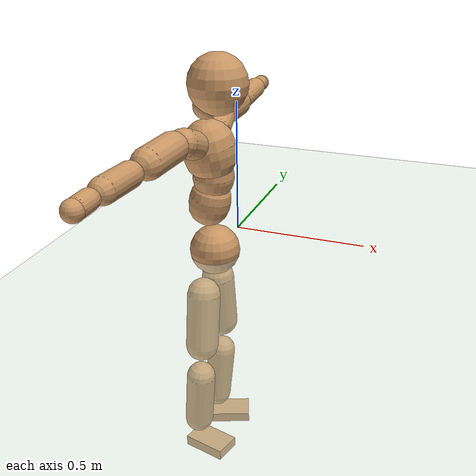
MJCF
<mujoco model="humanoid">
  <compiler coordinate="local" angle="radian"/>
  <default>
    <joint damping="0.0" armature="0.01" stiffness="0.0" limited="true"/>
    <geom conaffinity="1" condim="3" contype="7" margin="0.001" rgba="0.8 0.6 .4 1"/>
  </default>
  <asset>
    <texture type="skybox" builtin="gradient" rgb1=".4 .5 .6" rgb2="0 0 0" width="100" height="100"/>
    <texture builtin="flat" height="1278" mark="cross" markrgb="1 1 1" name="texgeom" random="0.01" rgb1="0.8 0.6 0.4" rgb2="0.8 0.6 0.4" type="cube" width="127"/>
    <texture builtin="checker" height="100" name="texplane" rgb1="0 0 0" rgb2="0.8 0.8 0.8" type="2d" width="100"/>
    <material name="MatPlane" reflectance="0.5" shininess="1" specular="1" texrepeat="60 60" texture="texplane"/>
    <material name="geom" texture="texgeom" texuniform="true"/>
  </asset>
  <worldbody>
    <light cutoff="100" diffuse="1 1 1" dir="-0 0 -1.3" directional="true" exponent="1" pos="0 0 1.3" specular=".1 .1 .1"/>
    <geom conaffinity="1" condim="3" name="floor" pos="0 0 0" rgba="0.8 0.9 0.8 1" size="100 100 .2" type="plane" material="MatPlane"/>
    <body name="Pelvis" pos="0.0016 -0.238 0.0183">
      <freejoint name="Pelvis"/>
      <geom type="sphere" contype="1" conaffinity="1" density="500" size="0.0912" pos="0.0000 0.0000 0.0000" name="Pelvis"/>
      <body name="L_Hip" pos="-0.0215 0.0596 -0.0785">
        <joint name="L_Hip_x" type="hinge" pos="0 0 0" axis="1 0 0" stiffness="800" damping="80" armature="0.02" range="-180.0000 180.0000"/>
        <joint name="L_Hip_y" type="hinge" pos="0 0 0" axis="0 1 0" stiffness="800" damping="80" armature="0.02" range="-180.0000 180.0000"/>
        <joint name="L_Hip_z" type="hinge" pos="0 0 0" axis="0 0 1" stiffness="800" damping="80" armature="0.02" range="-180.0000 180.0000"/>
        <geom type="capsule" contype="1" conaffinity="1" density="500" fromto="0.0007 0.0082 -0.0705 0.0029 0.0327 -0.2819" size="0.0611" name="L_Hip"/>
        <body name="L_Knee" pos="0.0036 0.0408 -0.3524">
          <joint name="L_Knee_x" type="hinge" pos="0 0 0" axis="1 0 0" stiffness="800" damping="80" armature="0.02" range="-180.0000 180.0000"/>
          <joint name="L_Knee_y" type="hinge" pos="0 0 0" axis="0 1 0" stiffness="800" damping="80" armature="0.02" range="-180.0000 180.0000"/>
          <joint name="L_Knee_z" type="hinge" pos="0 0 0" axis="0 0 1" stiffness="800" damping="80" armature="0.02" range="-180.0000 180.0000"/>
          <geom type="capsule" contype="1" conaffinity="1" density="500" fromto="-0.0071 -0.0025 -0.0732 -0.0284 -0.0098 -0.2930" size="0.0536" name="L_Knee"/>
          <body name="L_Ankle" pos="-0.0356 -0.0123 -0.3662">
            <joint name="L_Ankle_x" type="hinge" pos="0 0 0" axis="1 0 0" stiffness="800" damping="80" armature="0.02" range="-180.0000 180.0000"/>
            <joint name="L_Ankle_y" type="hinge" pos="0 0 0" axis="0 1 0" stiffness="800" damping="80" armature="0.02" range="-180.0000 180.0000"/>
            <joint name="L_Ankle_z" type="hinge" pos="0 0 0" axis="0 0 1" stiffness="800" damping="80" armature="0.02" range="-180.0000 180.0000"/>
            <geom type="box" contype="1" conaffinity="1" density="500" pos="0.0553 0.0208 -0.0271" size="0.0798 0.0503 0.0194" quat="0.9839 0.0000 0.0000 0.1788" name="L_Ankle"/>
            <body name="L_Toe" pos="0.1105 0.0415 -0.0542">
              <joint name="L_Toe_x" type="hinge" pos="0 0 0" axis="1 0 0" stiffness="500" damping="50" armature="0.02" range="-180.0000 180.0000"/>
              <joint name="L_Toe_y" type="hinge" pos="0 0 0" axis="0 1 0" stiffness="500" damping="50" armature="0.02" range="-180.0000 180.0000"/>
              <joint name="L_Toe_z" type="hinge" pos="0 0 0" axis="0 0 1" stiffness="500" damping="50" armature="0.02" range="-180.0000 180.0000"/>
              <geom type="box" contype="1" conaffinity="1" density="500" pos="0.0000 0.0000 0.0272" size="0.001 0.0024 0.001" quat="0.9830 0.0000 0.0000 0.1835" name="L_Toe"/>
            </body>
          </body>
        </body>
      </body>
      <body name="R_Hip" pos="-0.0189 -0.062 -0.0849">
        <joint name="R_Hip_x" type="hinge" pos="0 0 0" axis="1 0 0" stiffness="800" damping="80" armature="0.02" range="-180.0000 180.0000"/>
        <joint name="R_Hip_y" type="hinge" pos="0 0 0" axis="0 1 0" stiffness="800" damping="80" armature="0.02" range="-180.0000 180.0000"/>
        <joint name="R_Hip_z" type="hinge" pos="0 0 0" axis="0 0 1" stiffness="800" damping="80" armature="0.02" range="-180.0000 180.0000"/>
        <geom type="capsule" contype="1" conaffinity="1" density="500" fromto="-0.0013 -0.0080 -0.0694 -0.0051 -0.0321 -0.2776" size="0.0606" name="R_Hip"/>
        <body name="R_Knee" pos="-0.0063 -0.0402 -0.347">
          <joint name="R_Knee_x" type="hinge" pos="0 0 0" axis="1 0 0" stiffness="800" damping="80" armature="0.02" range="-180.0000 180.0000"/>
          <joint name="R_Knee_y" type="hinge" pos="0 0 0" axis="0 1 0" stiffness="800" damping="80" armature="0.02" range="-180.0000 180.0000"/>
          <joint name="R_Knee_z" type="hinge" pos="0 0 0" axis="0 0 1" stiffness="800" damping="80" armature="0.02" range="-180.0000 180.0000"/>
          <geom type="capsule" contype="1" conaffinity="1" density="500" fromto="-0.0066 0.0032 -0.0719 -0.0265 0.0127 -0.2878" size="0.0543" name="R_Knee"/>
          <body name="R_Ankle" pos="-0.0332 0.0158 -0.3597">
            <joint name="R_Ankle_x" type="hinge" pos="0 0 0" axis="1 0 0" stiffness="800" damping="80" armature="0.02" range="-180.0000 180.0000"/>
            <joint name="R_Ankle_y" type="hinge" pos="0 0 0" axis="0 1 0" stiffness="800" damping="80" armature="0.02" range="-180.0000 180.0000"/>
            <joint name="R_Ankle_z" type="hinge" pos="0 0 0" axis="0 0 1" stiffness="800" damping="80" armature="0.02" range="-180.0000 180.0000"/>
            <geom type="box" contype="1" conaffinity="1" density="500" pos="0.0591 -0.0151 -0.0282" size="0.0829 0.0499 0.0202" quat="0.9921 0.0000 0.0000 -0.1251" name="R_Ankle"/>
            <body name="R_Toe" pos="0.1182 -0.0303 -0.0565">
              <joint name="R_Toe_x" type="hinge" pos="0 0 0" axis="1 0 0" stiffness="500" damping="50" armature="0.02" range="-180.0000 180.0000"/>
              <joint name="R_Toe_y" type="hinge" pos="0 0 0" axis="0 1 0" stiffness="500" damping="50" armature="0.02" range="-180.0000 180.0000"/>
              <joint name="R_Toe_z" type="hinge" pos="0 0 0" axis="0 0 1" stiffness="500" damping="50" armature="0.02" range="-180.0000 180.0000"/>
              <geom type="box" contype="1" conaffinity="1" density="500" pos="0.0000 0.0000 0.0299" size="0.001 0.0024 0.0011" quat="0.9933 0.0000 0.0000 -0.1153" name="R_Toe"/>
            </body>
          </body>
        </body>
      </body>
      <body name="Torso" pos="-0.0316 0.0036 0.1148">
        <joint name="Torso_x" type="hinge" pos="0 0 0" axis="1 0 0" stiffness="1000" damping="100" armature="0.02" range="-180.0000 180.0000"/>
        <joint name="Torso_y" type="hinge" pos="0 0 0" axis="0 1 0" stiffness="1000" damping="100" armature="0.02" range="-180.0000 180.0000"/>
        <joint name="Torso_z" type="hinge" pos="0 0 0" axis="0 0 1" stiffness="1000" damping="100" armature="0.02" range="-180.0000 180.0000"/>
        <geom type="capsule" contype="1" conaffinity="1" density="500" fromto="0.0178 0.0023 0.0808 0.0119 0.0015 0.0538" size="0.0739" name="Torso"/>
        <body name="Spine" pos="0.0296 0.0038 0.1346">
          <joint name="Spine_x" type="hinge" pos="0 0 0" axis="1 0 0" stiffness="1000" damping="100" armature="0.02" range="-180.0000 180.0000"/>
          <joint name="Spine_y" type="hinge" pos="0 0 0" axis="0 1 0" stiffness="1000" damping="100" armature="0.02" range="-180.0000 180.0000"/>
          <joint name="Spine_z" type="hinge" pos="0 0 0" axis="0 0 1" stiffness="1000" damping="100" armature="0.02" range="-180.0000 180.0000"/>
          <geom type="capsule" contype="1" conaffinity="1" density="500" fromto="0.0020 -0.0016 0.0327 0.0014 -0.0010 0.0218" size="0.073" name="Spine"/>
          <body name="Chest" pos="0.0034 -0.0026 0.0546">
            <joint name="Chest_x" type="hinge" pos="0 0 0" axis="1 0 0" stiffness="1000" damping="100" armature="0.02" range="-180.0000 180.0000"/>
            <joint name="Chest_y" type="hinge" pos="0 0 0" axis="0 1 0" stiffness="1000" damping="100" armature="0.02" range="-180.0000 180.0000"/>
            <joint name="Chest_z" type="hinge" pos="0 0 0" axis="0 0 1" stiffness="1000" damping="100" armature="0.02" range="-180.0000 180.0000"/>
            <geom type="capsule" contype="1" conaffinity="1" density="500" fromto="-0.0140 -0.0053 0.0823 -0.0093 -0.0035 0.0548" size="0.0942" name="Chest"/>
            <body name="Neck" pos="-0.0298 -0.0122 0.2008">
              <joint name="Neck_x" type="hinge" pos="0 0 0" axis="1 0 0" stiffness="500" damping="50" armature="0.02" range="-180.0000 180.0000"/>
              <joint name="Neck_y" type="hinge" pos="0 0 0" axis="0 1 0" stiffness="500" damping="50" armature="0.02" range="-180.0000 180.0000"/>
              <joint name="Neck_z" type="hinge" pos="0 0 0" axis="0 0 1" stiffness="500" damping="50" armature="0.02" range="-180.0000 180.0000"/>
              <geom type="capsule" contype="1" conaffinity="1" density="500" fromto="0.0107 0.0020 0.0189 0.0429 0.0081 0.0755" size="0.043" name="Neck"/>
              <body name="Head" pos="0.0536 0.0101 0.0944">
                <joint name="Head_x" type="hinge" pos="0 0 0" axis="1 0 0" stiffness="500" damping="50" armature="0.02" range="-180.0000 180.0000"/>
                <joint name="Head_y" type="hinge" pos="0 0 0" axis="0 1 0" stiffness="500" damping="50" armature="0.02" range="-180.0000 180.0000"/>
                <joint name="Head_z" type="hinge" pos="0 0 0" axis="0 0 1" stiffness="500" damping="50" armature="0.02" range="-180.0000 180.0000"/>
                <geom type="sphere" contype="1" conaffinity="1" density="500" size="0.1026" pos="0.0000 0.0000 0.0000" name="Head"/>
              </body>
            </body>
            <body name="L_Thorax" pos="-0.0178 0.0665 0.1052">
              <joint name="L_Thorax_x" type="hinge" pos="0 0 0" axis="1 0 0" stiffness="500" damping="50" armature="0.02" range="-180.0000 180.0000"/>
              <joint name="L_Thorax_y" type="hinge" pos="0 0 0" axis="0 1 0" stiffness="500" damping="50" armature="0.02" range="-180.0000 180.0000"/>
              <joint name="L_Thorax_z" type="hinge" pos="0 0 0" axis="0 0 1" stiffness="500" damping="50" armature="0.02" range="-180.0000 180.0000"/>
              <geom type="capsule" contype="1" conaffinity="1" density="500" fromto="-0.0035 0.0231 0.0085 -0.0140 0.0925 0.0340" size="0.048" name="L_Thorax"/>
              <body name="L_Shoulder" pos="-0.0175 0.1156 0.0424">
                <joint name="L_Shoulder_x" type="hinge" pos="0 0 0" axis="1 0 0" stiffness="500" damping="50" armature="0.02" range="-720.0000 720.0000"/>
                <joint name="L_Shoulder_y" type="hinge" pos="0 0 0" axis="0 1 0" stiffness="500" damping="50" armature="0.02" range="-720.0000 720.0000"/>
                <joint name="L_Shoulder_z" type="hinge" pos="0 0 0" axis="0 0 1" stiffness="500" damping="50" armature="0.02" range="-720.0000 720.0000"/>
                <geom type="capsule" contype="1" conaffinity="1" density="500" fromto="-0.0029 0.0453 -0.0024 -0.0118 0.1811 -0.0095" size="0.0499" name="L_Shoulder"/>
                <body name="L_Elbow" pos="-0.0147 0.2263 -0.0119">
                  <joint name="L_Elbow_x" type="hinge" pos="0 0 0" axis="1 0 0" stiffness="500" damping="50" armature="0.02" range="-720.0000 720.0000"/>
                  <joint name="L_Elbow_y" type="hinge" pos="0 0 0" axis="0 1 0" stiffness="500" damping="50" armature="0.02" range="-720.0000 720.0000"/>
                  <joint name="L_Elbow_z" type="hinge" pos="0 0 0" axis="0 0 1" stiffness="500" damping="50" armature="0.02" range="-720.0000 720.0000"/>
                  <geom type="capsule" contype="1" conaffinity="1" density="500" fromto="-0.0017 0.0459 0.0019 -0.0068 0.1835 0.0076" size="0.0392" name="L_Elbow"/>
                  <body name="L_Wrist" pos="-0.0085 0.2294 0.0095">
                    <joint name="L_Wrist_x" type="hinge" pos="0 0 0" axis="1 0 0" stiffness="300" damping="30" armature="0.02" range="-180.0000 180.0000"/>
                    <joint name="L_Wrist_y" type="hinge" pos="0 0 0" axis="0 1 0" stiffness="300" damping="30" armature="0.02" range="-180.0000 180.0000"/>
                    <joint name="L_Wrist_z" type="hinge" pos="0 0 0" axis="0 0 1" stiffness="300" damping="30" armature="0.02" range="-180.0000 180.0000"/>
                    <geom type="capsule" contype="1" conaffinity="1" density="500" fromto="-0.0027 0.0152 -0.0019 -0.0107 0.0607 -0.0077" size="0.0304" name="L_Wrist"/>
                    <body name="L_Hand" pos="-0.0134 0.0759 -0.0097">
                      <joint name="L_Hand_x" type="hinge" pos="0 0 0" axis="1 0 0" stiffness="300" damping="30" armature="0.02" range="-180.0000 180.0000"/>
                      <joint name="L_Hand_y" type="hinge" pos="0 0 0" axis="0 1 0" stiffness="300" damping="30" armature="0.02" range="-180.0000 180.0000"/>
                      <joint name="L_Hand_z" type="hinge" pos="0 0 0" axis="0 0 1" stiffness="300" damping="30" armature="0.02" range="-180.0000 180.0000"/>
                      <geom type="sphere" contype="1" conaffinity="1" density="500" size="0.0314" pos="0.0000 0.0000 0.0000" name="L_Hand"/>
                    </body>
                  </body>
                </body>
              </body>
            </body>
            <body name="R_Thorax" pos="-0.0225 -0.0808 0.1053">
              <joint name="R_Thorax_x" type="hinge" pos="0 0 0" axis="1 0 0" stiffness="500" damping="50" armature="0.02" range="-180.0000 180.0000"/>
              <joint name="R_Thorax_y" type="hinge" pos="0 0 0" axis="0 1 0" stiffness="500" damping="50" armature="0.02" range="-180.0000 180.0000"/>
              <joint name="R_Thorax_z" type="hinge" pos="0 0 0" axis="0 0 1" stiffness="500" damping="50" armature="0.02" range="-180.0000 180.0000"/>
              <geom type="capsule" contype="1" conaffinity="1" density="500" fromto="-0.0016 -0.0219 0.0089 -0.0063 -0.0876 0.0354" size="0.049" name="R_Thorax"/>
              <body name="R_Shoulder" pos="-0.0079 -0.1095 0.0443">
                <joint name="R_Shoulder_x" type="hinge" pos="0 0 0" axis="1 0 0" stiffness="500" damping="50" armature="0.02" range="-720.0000 720.0000"/>
                <joint name="R_Shoulder_y" type="hinge" pos="0 0 0" axis="0 1 0" stiffness="500" damping="50" armature="0.02" range="-720.0000 720.0000"/>
                <joint name="R_Shoulder_z" type="hinge" pos="0 0 0" axis="0 0 1" stiffness="500" damping="50" armature="0.02" range="-720.0000 720.0000"/>
                <geom type="capsule" contype="1" conaffinity="1" density="500" fromto="-0.0049 -0.0466 -0.0024 -0.0194 -0.1864 -0.0097" size="0.0517" name="R_Shoulder"/>
                <body name="R_Elbow" pos="-0.0243 -0.2329 -0.0121">
                  <joint name="R_Elbow_x" type="hinge" pos="0 0 0" axis="1 0 0" stiffness="500" damping="50" armature="0.02" range="-720.0000 720.0000"/>
                  <joint name="R_Elbow_y" type="hinge" pos="0 0 0" axis="0 1 0" stiffness="500" damping="50" armature="0.02" range="-720.0000 720.0000"/>
                  <joint name="R_Elbow_z" type="hinge" pos="0 0 0" axis="0 0 1" stiffness="500" damping="50" armature="0.02" range="-720.0000 720.0000"/>
                  <geom type="capsule" contype="1" conaffinity="1" density="500" fromto="-0.0011 -0.0476 0.0012 -0.0046 -0.1905 0.0047" size="0.0407" name="R_Elbow"/>
                  <body name="R_Wrist" pos="-0.0057 -0.2381 0.0058">
                    <joint name="R_Wrist_x" type="hinge" pos="0 0 0" axis="1 0 0" stiffness="300" damping="30" armature="0.02" range="-180.0000 180.0000"/>
                    <joint name="R_Wrist_y" type="hinge" pos="0 0 0" axis="0 1 0" stiffness="300" damping="30" armature="0.02" range="-180.0000 180.0000"/>
                    <joint name="R_Wrist_z" type="hinge" pos="0 0 0" axis="0 0 1" stiffness="300" damping="30" armature="0.02" range="-180.0000 180.0000"/>
                    <geom type="capsule" contype="1" conaffinity="1" density="500" fromto="-0.0018 -0.0161 -0.0016 -0.0071 -0.0643 -0.0063" size="0.032" name="R_Wrist"/>
                    <body name="R_Hand" pos="-0.0089 -0.0804 -0.0078">
                      <joint name="R_Hand_x" type="hinge" pos="0 0 0" axis="1 0 0" stiffness="300" damping="30" armature="0.02" range="-180.0000 180.0000"/>
                      <joint name="R_Hand_y" type="hinge" pos="0 0 0" axis="0 1 0" stiffness="300" damping="30" armature="0.02" range="-180.0000 180.0000"/>
                      <joint name="R_Hand_z" type="hinge" pos="0 0 0" axis="0 0 1" stiffness="300" damping="30" armature="0.02" range="-180.0000 180.0000"/>
                      <geom type="sphere" contype="1" conaffinity="1" density="500" size="0.0329" pos="0.0000 0.0000 0.0000" name="R_Hand"/>
                    </body>
                  </body>
                </body>
              </body>
            </body>
          </body>
        </body>
      </body>
    </body>
  </worldbody>
  <actuator>
    <motor name="L_Hip_x" joint="L_Hip_x" gear="500"/>
    <motor name="L_Hip_y" joint="L_Hip_y" gear="500"/>
    <motor name="L_Hip_z" joint="L_Hip_z" gear="500"/>
    <motor name="L_Knee_x" joint="L_Knee_x" gear="500"/>
    <motor name="L_Knee_y" joint="L_Knee_y" gear="500"/>
    <motor name="L_Knee_z" joint="L_Knee_z" gear="500"/>
    <motor name="L_Ankle_x" joint="L_Ankle_x" gear="500"/>
    <motor name="L_Ankle_y" joint="L_Ankle_y" gear="500"/>
    <motor name="L_Ankle_z" joint="L_Ankle_z" gear="500"/>
    <motor name="L_Toe_x" joint="L_Toe_x" gear="500"/>
    <motor name="L_Toe_y" joint="L_Toe_y" gear="500"/>
    <motor name="L_Toe_z" joint="L_Toe_z" gear="500"/>
    <motor name="R_Hip_x" joint="R_Hip_x" gear="500"/>
    <motor name="R_Hip_y" joint="R_Hip_y" gear="500"/>
    <motor name="R_Hip_z" joint="R_Hip_z" gear="500"/>
    <motor name="R_Knee_x" joint="R_Knee_x" gear="500"/>
    <motor name="R_Knee_y" joint="R_Knee_y" gear="500"/>
    <motor name="R_Knee_z" joint="R_Knee_z" gear="500"/>
    <motor name="R_Ankle_x" joint="R_Ankle_x" gear="500"/>
    <motor name="R_Ankle_y" joint="R_Ankle_y" gear="500"/>
    <motor name="R_Ankle_z" joint="R_Ankle_z" gear="500"/>
    <motor name="R_Toe_x" joint="R_Toe_x" gear="500"/>
    <motor name="R_Toe_y" joint="R_Toe_y" gear="500"/>
    <motor name="R_Toe_z" joint="R_Toe_z" gear="500"/>
    <motor name="Torso_x" joint="Torso_x" gear="500"/>
    <motor name="Torso_y" joint="Torso_y" gear="500"/>
    <motor name="Torso_z" joint="Torso_z" gear="500"/>
    <motor name="Spine_x" joint="Spine_x" gear="500"/>
    <motor name="Spine_y" joint="Spine_y" gear="500"/>
    <motor name="Spine_z" joint="Spine_z" gear="500"/>
    <motor name="Chest_x" joint="Chest_x" gear="500"/>
    <motor name="Chest_y" joint="Chest_y" gear="500"/>
    <motor name="Chest_z" joint="Chest_z" gear="500"/>
    <motor name="Neck_x" joint="Neck_x" gear="500"/>
    <motor name="Neck_y" joint="Neck_y" gear="500"/>
    <motor name="Neck_z" joint="Neck_z" gear="500"/>
    <motor name="Head_x" joint="Head_x" gear="500"/>
    <motor name="Head_y" joint="Head_y" gear="500"/>
    <motor name="Head_z" joint="Head_z" gear="500"/>
    <motor name="L_Thorax_x" joint="L_Thorax_x" gear="500"/>
    <motor name="L_Thorax_y" joint="L_Thorax_y" gear="500"/>
    <motor name="L_Thorax_z" joint="L_Thorax_z" gear="500"/>
    <motor name="L_Shoulder_x" joint="L_Shoulder_x" gear="500"/>
    <motor name="L_Shoulder_y" joint="L_Shoulder_y" gear="500"/>
    <motor name="L_Shoulder_z" joint="L_Shoulder_z" gear="500"/>
    <motor name="L_Elbow_x" joint="L_Elbow_x" gear="500"/>
    <motor name="L_Elbow_y" joint="L_Elbow_y" gear="500"/>
    <motor name="L_Elbow_z" joint="L_Elbow_z" gear="500"/>
    <motor name="L_Wrist_x" joint="L_Wrist_x" gear="500"/>
    <motor name="L_Wrist_y" joint="L_Wrist_y" gear="500"/>
    <motor name="L_Wrist_z" joint="L_Wrist_z" gear="500"/>
    <motor name="L_Hand_x" joint="L_Hand_x" gear="500"/>
    <motor name="L_Hand_y" joint="L_Hand_y" gear="500"/>
    <motor name="L_Hand_z" joint="L_Hand_z" gear="500"/>
    <motor name="R_Thorax_x" joint="R_Thorax_x" gear="500"/>
    <motor name="R_Thorax_y" joint="R_Thorax_y" gear="500"/>
    <motor name="R_Thorax_z" joint="R_Thorax_z" gear="500"/>
    <motor name="R_Shoulder_x" joint="R_Shoulder_x" gear="500"/>
    <motor name="R_Shoulder_y" joint="R_Shoulder_y" gear="500"/>
    <motor name="R_Shoulder_z" joint="R_Shoulder_z" gear="500"/>
    <motor name="R_Elbow_x" joint="R_Elbow_x" gear="500"/>
    <motor name="R_Elbow_y" joint="R_Elbow_y" gear="500"/>
    <motor name="R_Elbow_z" joint="R_Elbow_z" gear="500"/>
    <motor name="R_Wrist_x" joint="R_Wrist_x" gear="500"/>
    <motor name="R_Wrist_y" joint="R_Wrist_y" gear="500"/>
    <motor name="R_Wrist_z" joint="R_Wrist_z" gear="500"/>
    <motor name="R_Hand_x" joint="R_Hand_x" gear="500"/>
    <motor name="R_Hand_y" joint="R_Hand_y" gear="500"/>
    <motor name="R_Hand_z" joint="R_Hand_z" gear="500"/>
  </actuator>
  <contact>
    <exclude body1="Torso" body2="Chest"/>
    <exclude body1="Head" body2="Chest"/>
    <exclude body1="R_Knee" body2="R_Toe"/>
    <exclude body1="R_Knee" body2="L_Ankle"/>
    <exclude body1="R_Knee" body2="L_Toe"/>
    <exclude body1="L_Knee" body2="L_Toe"/>
    <exclude body1="L_Knee" body2="R_Ankle"/>
    <exclude body1="L_Knee" body2="R_Toe"/>
    <exclude body1="L_Shoulder" body2="Chest"/>
    <exclude body1="R_Shoulder" body2="Chest"/>
  </contact>
  <sensor/>
  <size njmax="700" nconmax="700"/>
</mujoco>
